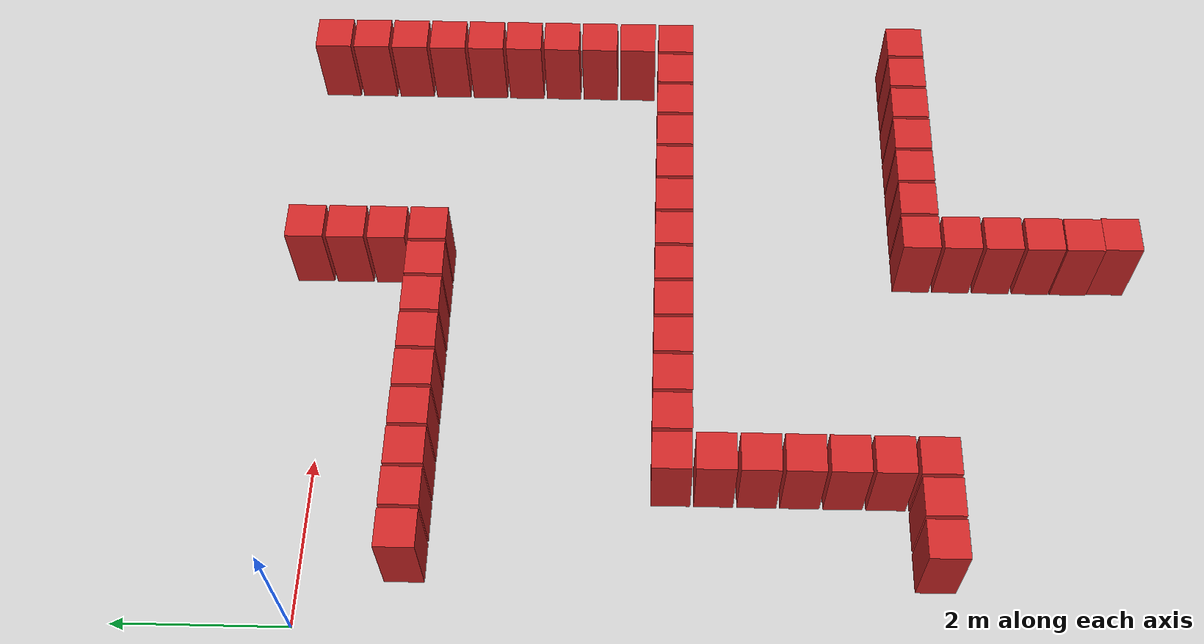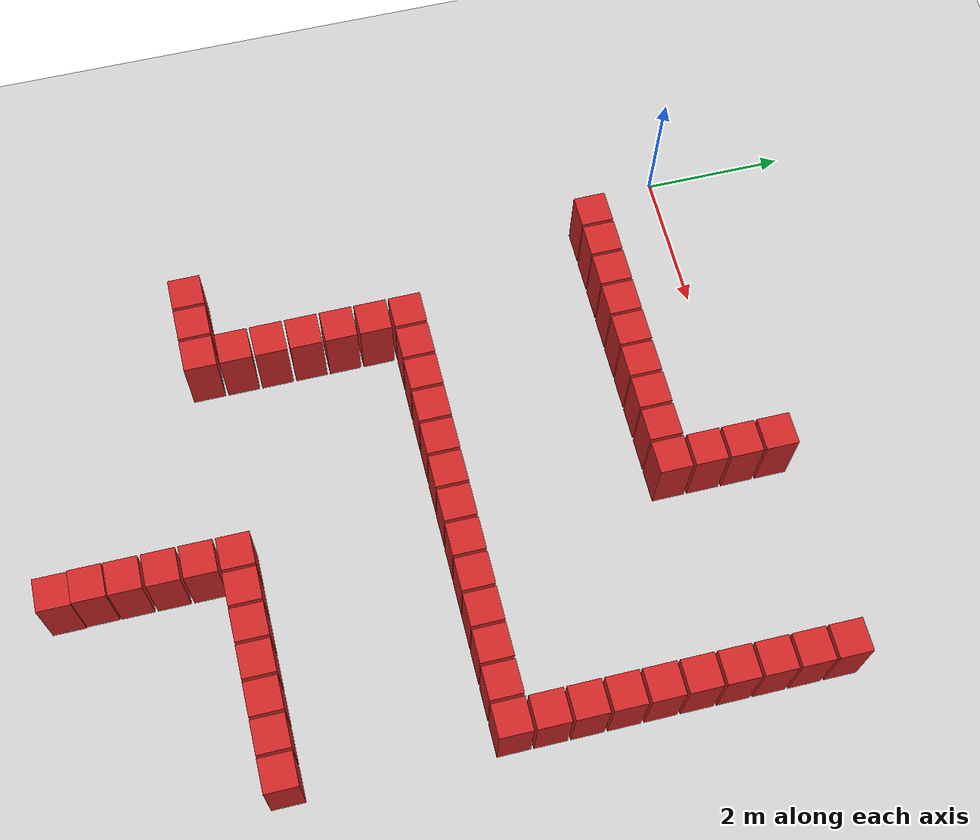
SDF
<sdf version="1.6">
 <world name="default">
  <model name="ground_plane">
   <static>1</static>
   <link name="link">
    <collision name="collision">
     <geometry><plane><normal>0 0 1</normal><size>100 100</size></plane></geometry>
     <surface><friction><ode><mu>100</mu><mu2>50</mu2></ode></friction></surface>
    </collision>
    <visual name="visual">
     <cast_shadows>0</cast_shadows>
     <geometry><plane><normal>0 0 1</normal><size>100 100</size></plane></geometry>
     <material>
      <script><uri>file://media/materials/scripts/gazebo.material</uri><name>Gazebo/Grey</name></script>
     </material>
    </visual>
   </link>
  </model>
  <model name="box_obstacle108">
   <static>0</static>
   <link name="link">
    <pose>0 0 0.1 0 -0 0</pose>
    <inertial>
     <mass>100</mass>
     <inertia>
      <ixx>0.166667</ixx>
      <ixy>0</ixy>
      <ixz>0</ixz>
      <iyy>0.166667</iyy>
      <iyz>0</iyz>
      <izz>0.166667</izz>
     </inertia>
    </inertial>
    <collision name="collision"><geometry><box><size>0.45 0.45 1</size></box></geometry></collision>
    <visual name="visual">
     <geometry><box><size>0.45 0.45 1</size></box></geometry>
     <material>
      <script><name>Gazebo/Red</name><uri>file://media/materials/scripts/gazebo.material</uri></script>
     </material>
    </visual>
   </link>
   <pose>0.779492 -7.06124 0.4 0 5e-06 0.002247</pose>
  </model>
  <model name="box_obstacle109">
   <static>0</static>
   <link name="link">
    <pose>0 0 0.1 0 -0 0</pose>
    <inertial>
     <mass>100</mass>
     <inertia>
      <ixx>0.166667</ixx>
      <ixy>0</ixy>
      <ixz>0</ixz>
      <iyy>0.166667</iyy>
      <iyz>0</iyz>
      <izz>0.166667</izz>
     </inertia>
    </inertial>
    <collision name="collision"><geometry><box><size>0.45 0.45 1</size></box></geometry></collision>
    <visual name="visual">
     <geometry><box><size>0.45 0.45 1</size></box></geometry>
     <material>
      <script><name>Gazebo/Red</name><uri>file://media/materials/scripts/gazebo.material</uri></script>
     </material>
    </visual>
   </link>
   <pose>0.779492 -1.18124 0.4 0 5e-06 0.002247</pose>
  </model>
  <model name="box_obstacle113">
   <static>0</static>
   <link name="link">
    <pose>0 0 0.1 0 -0 0</pose>
    <inertial>
     <mass>100</mass>
     <inertia>
      <ixx>0.166667</ixx>
      <ixy>0</ixy>
      <ixz>0</ixz>
      <iyy>0.166667</iyy>
      <iyz>0</iyz>
      <izz>0.166667</izz>
     </inertia>
    </inertial>
    <collision name="collision"><geometry><box><size>0.45 0.45 1</size></box></geometry></collision>
    <visual name="visual">
     <geometry><box><size>0.45 0.45 1</size></box></geometry>
     <material>
      <script><name>Gazebo/Red</name><uri>file://media/materials/scripts/gazebo.material</uri></script>
     </material>
    </visual>
   </link>
   <pose>1.26949 -7.06124 0.4 0 5e-06 0.002247</pose>
  </model>
  <model name="box_obstacle114">
   <static>0</static>
   <link name="link">
    <pose>0 0 0.1 0 -0 0</pose>
    <inertial>
     <mass>100</mass>
     <inertia>
      <ixx>0.166667</ixx>
      <ixy>0</ixy>
      <ixz>0</ixz>
      <iyy>0.166667</iyy>
      <iyz>0</iyz>
      <izz>0.166667</izz>
     </inertia>
    </inertial>
    <collision name="collision"><geometry><box><size>0.45 0.45 1</size></box></geometry></collision>
    <visual name="visual">
     <geometry><box><size>0.45 0.45 1</size></box></geometry>
     <material>
      <script><name>Gazebo/Red</name><uri>file://media/materials/scripts/gazebo.material</uri></script>
     </material>
    </visual>
   </link>
   <pose>1.26949 -1.18124 0.4 0 5e-06 0.002247</pose>
  </model>
  <model name="box_obstacle118">
   <static>0</static>
   <link name="link">
    <pose>0 0 0.1 0 -0 0</pose>
    <inertial>
     <mass>100</mass>
     <inertia>
      <ixx>0.166667</ixx>
      <ixy>0</ixy>
      <ixz>0</ixz>
      <iyy>0.166667</iyy>
      <iyz>0</iyz>
      <izz>0.166667</izz>
     </inertia>
    </inertial>
    <collision name="collision"><geometry><box><size>0.45 0.45 1</size></box></geometry></collision>
    <visual name="visual">
     <geometry><box><size>0.45 0.45 1</size></box></geometry>
     <material>
      <script><name>Gazebo/Red</name><uri>file://media/materials/scripts/gazebo.material</uri></script>
     </material>
    </visual>
   </link>
   <pose>1.75949 -7.06124 0.4 0 5e-06 0.002247</pose>
  </model>
  <model name="box_obstacle119">
   <static>0</static>
   <link name="link">
    <pose>0 0 0.1 0 -0 0</pose>
    <inertial>
     <mass>100</mass>
     <inertia>
      <ixx>0.166667</ixx>
      <ixy>0</ixy>
      <ixz>0</ixz>
      <iyy>0.166667</iyy>
      <iyz>0</iyz>
      <izz>0.166667</izz>
     </inertia>
    </inertial>
    <collision name="collision"><geometry><box><size>0.45 0.45 1</size></box></geometry></collision>
    <visual name="visual">
     <geometry><box><size>0.45 0.45 1</size></box></geometry>
     <material>
      <script><name>Gazebo/Red</name><uri>file://media/materials/scripts/gazebo.material</uri></script>
     </material>
    </visual>
   </link>
   <pose>1.75949 -6.57124 0.4 0 5e-06 0.002247</pose>
  </model>
  <model name="box_obstacle120">
   <static>0</static>
   <link name="link">
    <pose>0 0 0.1 0 -0 0</pose>
    <inertial>
     <mass>100</mass>
     <inertia>
      <ixx>0.166667</ixx>
      <ixy>0</ixy>
      <ixz>0</ixz>
      <iyy>0.166667</iyy>
      <iyz>0</iyz>
      <izz>0.166667</izz>
     </inertia>
    </inertial>
    <collision name="collision"><geometry><box><size>0.45 0.45 1</size></box></geometry></collision>
    <visual name="visual">
     <geometry><box><size>0.45 0.45 1</size></box></geometry>
     <material>
      <script><name>Gazebo/Red</name><uri>file://media/materials/scripts/gazebo.material</uri></script>
     </material>
    </visual>
   </link>
   <pose>1.75949 -6.08124 0.4 0 5e-06 0.002247</pose>
  </model>
  <model name="box_obstacle121">
   <static>0</static>
   <link name="link">
    <pose>0 0 0.1 0 -0 0</pose>
    <inertial>
     <mass>100</mass>
     <inertia>
      <ixx>0.166667</ixx>
      <ixy>0</ixy>
      <ixz>0</ixz>
      <iyy>0.166667</iyy>
      <iyz>0</iyz>
      <izz>0.166667</izz>
     </inertia>
    </inertial>
    <collision name="collision"><geometry><box><size>0.45 0.45 1</size></box></geometry></collision>
    <visual name="visual">
     <geometry><box><size>0.45 0.45 1</size></box></geometry>
     <material>
      <script><name>Gazebo/Red</name><uri>file://media/materials/scripts/gazebo.material</uri></script>
     </material>
    </visual>
   </link>
   <pose>1.75949 -5.59124 0.4 0 5e-06 0.002247</pose>
  </model>
  <model name="box_obstacle122">
   <static>0</static>
   <link name="link">
    <pose>0 0 0.1 0 -0 0</pose>
    <inertial>
     <mass>100</mass>
     <inertia>
      <ixx>0.166667</ixx>
      <ixy>0</ixy>
      <ixz>0</ixz>
      <iyy>0.166667</iyy>
      <iyz>0</iyz>
      <izz>0.166667</izz>
     </inertia>
    </inertial>
    <collision name="collision"><geometry><box><size>0.45 0.45 1</size></box></geometry></collision>
    <visual name="visual">
     <geometry><box><size>0.45 0.45 1</size></box></geometry>
     <material>
      <script><name>Gazebo/Red</name><uri>file://media/materials/scripts/gazebo.material</uri></script>
     </material>
    </visual>
   </link>
   <pose>1.75949 -5.10124 0.4 0 5e-06 0.002247</pose>
  </model>
  <model name="box_obstacle123">
   <static>0</static>
   <link name="link">
    <pose>0 0 0.1 0 -0 0</pose>
    <inertial>
     <mass>100</mass>
     <inertia>
      <ixx>0.166667</ixx>
      <ixy>0</ixy>
      <ixz>0</ixz>
      <iyy>0.166667</iyy>
      <iyz>0</iyz>
      <izz>0.166667</izz>
     </inertia>
    </inertial>
    <collision name="collision"><geometry><box><size>0.45 0.45 1</size></box></geometry></collision>
    <visual name="visual">
     <geometry><box><size>0.45 0.45 1</size></box></geometry>
     <material>
      <script><name>Gazebo/Red</name><uri>file://media/materials/scripts/gazebo.material</uri></script>
     </material>
    </visual>
   </link>
   <pose>1.75949 -4.61124 0.4 0 5e-06 0.002247</pose>
  </model>
  <model name="box_obstacle124">
   <static>0</static>
   <link name="link">
    <pose>0 0 0.1 0 -0 0</pose>
    <inertial>
     <mass>100</mass>
     <inertia>
      <ixx>0.166667</ixx>
      <ixy>0</ixy>
      <ixz>0</ixz>
      <iyy>0.166667</iyy>
      <iyz>0</iyz>
      <izz>0.166667</izz>
     </inertia>
    </inertial>
    <collision name="collision"><geometry><box><size>0.45 0.45 1</size></box></geometry></collision>
    <visual name="visual">
     <geometry><box><size>0.45 0.45 1</size></box></geometry>
     <material>
      <script><name>Gazebo/Red</name><uri>file://media/materials/scripts/gazebo.material</uri></script>
     </material>
    </visual>
   </link>
   <pose>1.75949 -4.12124 0.4 0 5e-06 0.002247</pose>
  </model>
  <model name="box_obstacle125">
   <static>0</static>
   <link name="link">
    <pose>0 0 0.1 0 -0 0</pose>
    <inertial>
     <mass>100</mass>
     <inertia>
      <ixx>0.166667</ixx>
      <ixy>0</ixy>
      <ixz>0</ixz>
      <iyy>0.166667</iyy>
      <iyz>0</iyz>
      <izz>0.166667</izz>
     </inertia>
    </inertial>
    <collision name="collision"><geometry><box><size>0.45 0.45 1</size></box></geometry></collision>
    <visual name="visual">
     <geometry><box><size>0.45 0.45 1</size></box></geometry>
     <material>
      <script><name>Gazebo/Red</name><uri>file://media/materials/scripts/gazebo.material</uri></script>
     </material>
    </visual>
   </link>
   <pose>1.75949 -1.18124 0.4 0 5e-06 0.002247</pose>
  </model>
  <model name="box_obstacle129">
   <static>0</static>
   <link name="link">
    <pose>0 0 0.1 0 -0 0</pose>
    <inertial>
     <mass>100</mass>
     <inertia>
      <ixx>0.166667</ixx>
      <ixy>0</ixy>
      <ixz>0</ixz>
      <iyy>0.166667</iyy>
      <iyz>0</iyz>
      <izz>0.166667</izz>
     </inertia>
    </inertial>
    <collision name="collision"><geometry><box><size>0.45 0.45 1</size></box></geometry></collision>
    <visual name="visual">
     <geometry><box><size>0.45 0.45 1</size></box></geometry>
     <material>
      <script><name>Gazebo/Red</name><uri>file://media/materials/scripts/gazebo.material</uri></script>
     </material>
    </visual>
   </link>
   <pose>2.24949 -4.12124 0.4 0 5e-06 0.002247</pose>
  </model>
  <model name="box_obstacle130">
   <static>0</static>
   <link name="link">
    <pose>0 0 0.1 0 -0 0</pose>
    <inertial>
     <mass>100</mass>
     <inertia>
      <ixx>0.166667</ixx>
      <ixy>0</ixy>
      <ixz>0</ixz>
      <iyy>0.166667</iyy>
      <iyz>0</iyz>
      <izz>0.166667</izz>
     </inertia>
    </inertial>
    <collision name="collision"><geometry><box><size>0.45 0.45 1</size></box></geometry></collision>
    <visual name="visual">
     <geometry><box><size>0.45 0.45 1</size></box></geometry>
     <material>
      <script><name>Gazebo/Red</name><uri>file://media/materials/scripts/gazebo.material</uri></script>
     </material>
    </visual>
   </link>
   <pose>2.24949 -1.18124 0.4 0 5e-06 0.002247</pose>
  </model>
  <model name="box_obstacle132">
   <static>0</static>
   <link name="link">
    <pose>0 0 0.1 0 -0 0</pose>
    <inertial>
     <mass>100</mass>
     <inertia>
      <ixx>0.166667</ixx>
      <ixy>0</ixy>
      <ixz>0</ixz>
      <iyy>0.166667</iyy>
      <iyz>0</iyz>
      <izz>0.166667</izz>
     </inertia>
    </inertial>
    <collision name="collision"><geometry><box><size>0.45 0.45 1</size></box></geometry></collision>
    <visual name="visual">
     <geometry><box><size>0.45 0.45 1</size></box></geometry>
     <material>
      <script><name>Gazebo/Red</name><uri>file://media/materials/scripts/gazebo.material</uri></script>
     </material>
    </visual>
   </link>
   <pose>2.73949 -4.12124 0.4 0 5e-06 0.002247</pose>
  </model>
  <model name="box_obstacle133">
   <static>0</static>
   <link name="link">
    <pose>0 0 0.1 0 -0 0</pose>
    <inertial>
     <mass>100</mass>
     <inertia>
      <ixx>0.166667</ixx>
      <ixy>0</ixy>
      <ixz>0</ixz>
      <iyy>0.166667</iyy>
      <iyz>0</iyz>
      <izz>0.166667</izz>
     </inertia>
    </inertial>
    <collision name="collision"><geometry><box><size>0.45 0.45 1</size></box></geometry></collision>
    <visual name="visual">
     <geometry><box><size>0.45 0.45 1</size></box></geometry>
     <material>
      <script><name>Gazebo/Red</name><uri>file://media/materials/scripts/gazebo.material</uri></script>
     </material>
    </visual>
   </link>
   <pose>2.73949 -1.18124 0.4 0 5e-06 0.002247</pose>
  </model>
  <model name="box_obstacle135">
   <static>0</static>
   <link name="link">
    <pose>0 0 0.1 0 -0 0</pose>
    <inertial>
     <mass>100</mass>
     <inertia>
      <ixx>0.166667</ixx>
      <ixy>0</ixy>
      <ixz>0</ixz>
      <iyy>0.166667</iyy>
      <iyz>0</iyz>
      <izz>0.166667</izz>
     </inertia>
    </inertial>
    <collision name="collision"><geometry><box><size>0.45 0.45 1</size></box></geometry></collision>
    <visual name="visual">
     <geometry><box><size>0.45 0.45 1</size></box></geometry>
     <material>
      <script><name>Gazebo/Red</name><uri>file://media/materials/scripts/gazebo.material</uri></script>
     </material>
    </visual>
   </link>
   <pose>3.22949 -4.12124 0.4 0 5e-06 0.002247</pose>
  </model>
  <model name="box_obstacle136">
   <static>0</static>
   <link name="link">
    <pose>0 0 0.1 0 -0 0</pose>
    <inertial>
     <mass>100</mass>
     <inertia>
      <ixx>0.166667</ixx>
      <ixy>0</ixy>
      <ixz>0</ixz>
      <iyy>0.166667</iyy>
      <iyz>0</iyz>
      <izz>0.166667</izz>
     </inertia>
    </inertial>
    <collision name="collision"><geometry><box><size>0.45 0.45 1</size></box></geometry></collision>
    <visual name="visual">
     <geometry><box><size>0.45 0.45 1</size></box></geometry>
     <material>
      <script><name>Gazebo/Red</name><uri>file://media/materials/scripts/gazebo.material</uri></script>
     </material>
    </visual>
   </link>
   <pose>3.22949 -1.18124 0.4 0 5e-06 0.002247</pose>
  </model>
  <model name="box_obstacle138">
   <static>0</static>
   <link name="link">
    <pose>0 0 0.1 0 -0 0</pose>
    <inertial>
     <mass>100</mass>
     <inertia>
      <ixx>0.166667</ixx>
      <ixy>0</ixy>
      <ixz>0</ixz>
      <iyy>0.166667</iyy>
      <iyz>0</iyz>
      <izz>0.166667</izz>
     </inertia>
    </inertial>
    <collision name="collision"><geometry><box><size>0.45 0.45 1</size></box></geometry></collision>
    <visual name="visual">
     <geometry><box><size>0.45 0.45 1</size></box></geometry>
     <material>
      <script><name>Gazebo/Red</name><uri>file://media/materials/scripts/gazebo.material</uri></script>
     </material>
    </visual>
   </link>
   <pose>3.71949 -4.12124 0.4 0 5e-06 0.002247</pose>
  </model>
  <model name="box_obstacle139">
   <static>0</static>
   <link name="link">
    <pose>0 0 0.1 0 -0 0</pose>
    <inertial>
     <mass>100</mass>
     <inertia>
      <ixx>0.166667</ixx>
      <ixy>0</ixy>
      <ixz>0</ixz>
      <iyy>0.166667</iyy>
      <iyz>0</iyz>
      <izz>0.166667</izz>
     </inertia>
    </inertial>
    <collision name="collision"><geometry><box><size>0.45 0.45 1</size></box></geometry></collision>
    <visual name="visual">
     <geometry><box><size>0.45 0.45 1</size></box></geometry>
     <material>
      <script><name>Gazebo/Red</name><uri>file://media/materials/scripts/gazebo.material</uri></script>
     </material>
    </visual>
   </link>
   <pose>3.71949 -1.18124 0.4 0 5e-06 0.002247</pose>
  </model>
  <model name="box_obstacle141">
   <static>0</static>
   <link name="link">
    <pose>0 0 0.1 0 -0 0</pose>
    <inertial>
     <mass>100</mass>
     <inertia>
      <ixx>0.166667</ixx>
      <ixy>0</ixy>
      <ixz>0</ixz>
      <iyy>0.166667</iyy>
      <iyz>0</iyz>
      <izz>0.166667</izz>
     </inertia>
    </inertial>
    <collision name="collision"><geometry><box><size>0.45 0.45 1</size></box></geometry></collision>
    <visual name="visual">
     <geometry><box><size>0.45 0.45 1</size></box></geometry>
     <material>
      <script><name>Gazebo/Red</name><uri>file://media/materials/scripts/gazebo.material</uri></script>
     </material>
    </visual>
   </link>
   <pose>4.20949 -4.12124 0.4 0 5e-06 0.002247</pose>
  </model>
  <model name="box_obstacle142">
   <static>0</static>
   <link name="link">
    <pose>0 0 0.1 0 -0 0</pose>
    <inertial>
     <mass>100</mass>
     <inertia>
      <ixx>0.166667</ixx>
      <ixy>0</ixy>
      <ixz>0</ixz>
      <iyy>0.166667</iyy>
      <iyz>0</iyz>
      <izz>0.166667</izz>
     </inertia>
    </inertial>
    <collision name="collision"><geometry><box><size>0.45 0.45 1</size></box></geometry></collision>
    <visual name="visual">
     <geometry><box><size>0.45 0.45 1</size></box></geometry>
     <material>
      <script><name>Gazebo/Red</name><uri>file://media/materials/scripts/gazebo.material</uri></script>
     </material>
    </visual>
   </link>
   <pose>4.20949 -1.18124 0.4 0 5e-06 0.002247</pose>
  </model>
  <model name="box_obstacle144">
   <static>0</static>
   <link name="link">
    <pose>0 0 0.1 0 -0 0</pose>
    <inertial>
     <mass>100</mass>
     <inertia>
      <ixx>0.166667</ixx>
      <ixy>0</ixy>
      <ixz>0</ixz>
      <iyy>0.166667</iyy>
      <iyz>0</iyz>
      <izz>0.166667</izz>
     </inertia>
    </inertial>
    <collision name="collision"><geometry><box><size>0.45 0.45 1</size></box></geometry></collision>
    <visual name="visual">
     <geometry><box><size>0.45 0.45 1</size></box></geometry>
     <material>
      <script><name>Gazebo/Red</name><uri>file://media/materials/scripts/gazebo.material</uri></script>
     </material>
    </visual>
   </link>
   <pose>4.7127 -9.44829 0.4 -4e-06 5e-06 -0.000793</pose>
  </model>
  <model name="box_obstacle145">
   <static>0</static>
   <link name="link">
    <pose>0 0 0.1 0 -0 0</pose>
    <inertial>
     <mass>100</mass>
     <inertia>
      <ixx>0.166667</ixx>
      <ixy>0</ixy>
      <ixz>0</ixz>
      <iyy>0.166667</iyy>
      <iyz>0</iyz>
      <izz>0.166667</izz>
     </inertia>
    </inertial>
    <collision name="collision"><geometry><box><size>0.45 0.45 1</size></box></geometry></collision>
    <visual name="visual">
     <geometry><box><size>0.45 0.45 1</size></box></geometry>
     <material>
      <script><name>Gazebo/Red</name><uri>file://media/materials/scripts/gazebo.material</uri></script>
     </material>
    </visual>
   </link>
   <pose>4.69831 -8.99816 0.399997 -3e-06 1e-06 -0.000326</pose>
  </model>
  <model name="box_obstacle146">
   <static>0</static>
   <link name="link">
    <pose>0 0 0.1 0 -0 0</pose>
    <inertial>
     <mass>100</mass>
     <inertia>
      <ixx>0.166667</ixx>
      <ixy>0</ixy>
      <ixz>0</ixz>
      <iyy>0.166667</iyy>
      <iyz>0</iyz>
      <izz>0.166667</izz>
     </inertia>
    </inertial>
    <collision name="collision"><geometry><box><size>0.45 0.45 1</size></box></geometry></collision>
    <visual name="visual">
     <geometry><box><size>0.45 0.45 1</size></box></geometry>
     <material>
      <script><name>Gazebo/Red</name><uri>file://media/materials/scripts/gazebo.material</uri></script>
     </material>
    </visual>
   </link>
   <pose>4.69949 -8.53124 0.4 0 5e-06 0.002248</pose>
  </model>
  <model name="box_obstacle147">
   <static>0</static>
   <link name="link">
    <pose>0 0 0.1 0 -0 0</pose>
    <inertial>
     <mass>100</mass>
     <inertia>
      <ixx>0.166667</ixx>
      <ixy>0</ixy>
      <ixz>0</ixz>
      <iyy>0.166667</iyy>
      <iyz>0</iyz>
      <izz>0.166667</izz>
     </inertia>
    </inertial>
    <collision name="collision"><geometry><box><size>0.45 0.45 1</size></box></geometry></collision>
    <visual name="visual">
     <geometry><box><size>0.45 0.45 1</size></box></geometry>
     <material>
      <script><name>Gazebo/Red</name><uri>file://media/materials/scripts/gazebo.material</uri></script>
     </material>
    </visual>
   </link>
   <pose>4.69949 -8.04124 0.4 0 5e-06 0.002247</pose>
  </model>
  <model name="box_obstacle148">
   <static>0</static>
   <link name="link">
    <pose>0 0 0.1 0 -0 0</pose>
    <inertial>
     <mass>100</mass>
     <inertia>
      <ixx>0.166667</ixx>
      <ixy>0</ixy>
      <ixz>0</ixz>
      <iyy>0.166667</iyy>
      <iyz>0</iyz>
      <izz>0.166667</izz>
     </inertia>
    </inertial>
    <collision name="collision"><geometry><box><size>0.45 0.45 1</size></box></geometry></collision>
    <visual name="visual">
     <geometry><box><size>0.45 0.45 1</size></box></geometry>
     <material>
      <script><name>Gazebo/Red</name><uri>file://media/materials/scripts/gazebo.material</uri></script>
     </material>
    </visual>
   </link>
   <pose>4.69949 -7.55124 0.4 0 5e-06 0.002247</pose>
  </model>
  <model name="box_obstacle149">
   <static>0</static>
   <link name="link">
    <pose>0 0 0.1 0 -0 0</pose>
    <inertial>
     <mass>100</mass>
     <inertia>
      <ixx>0.166667</ixx>
      <ixy>0</ixy>
      <ixz>0</ixz>
      <iyy>0.166667</iyy>
      <iyz>0</iyz>
      <izz>0.166667</izz>
     </inertia>
    </inertial>
    <collision name="collision"><geometry><box><size>0.45 0.45 1</size></box></geometry></collision>
    <visual name="visual">
     <geometry><box><size>0.45 0.45 1</size></box></geometry>
     <material>
      <script><name>Gazebo/Red</name><uri>file://media/materials/scripts/gazebo.material</uri></script>
     </material>
    </visual>
   </link>
   <pose>4.69949 -7.06124 0.4 0 5e-06 0.002247</pose>
  </model>
  <model name="box_obstacle150">
   <static>0</static>
   <link name="link">
    <pose>0 0 0.1 0 -0 0</pose>
    <inertial>
     <mass>100</mass>
     <inertia>
      <ixx>0.166667</ixx>
      <ixy>0</ixy>
      <ixz>0</ixz>
      <iyy>0.166667</iyy>
      <iyz>0</iyz>
      <izz>0.166667</izz>
     </inertia>
    </inertial>
    <collision name="collision"><geometry><box><size>0.45 0.45 1</size></box></geometry></collision>
    <visual name="visual">
     <geometry><box><size>0.45 0.45 1</size></box></geometry>
     <material>
      <script><name>Gazebo/Red</name><uri>file://media/materials/scripts/gazebo.material</uri></script>
     </material>
    </visual>
   </link>
   <pose>4.69949 -4.12124 0.4 0 5e-06 0.002247</pose>
  </model>
  <model name="box_obstacle151">
   <static>0</static>
   <link name="link">
    <pose>0 0 0.1 0 -0 0</pose>
    <inertial>
     <mass>100</mass>
     <inertia>
      <ixx>0.166667</ixx>
      <ixy>0</ixy>
      <ixz>0</ixz>
      <iyy>0.166667</iyy>
      <iyz>0</iyz>
      <izz>0.166667</izz>
     </inertia>
    </inertial>
    <collision name="collision"><geometry><box><size>0.45 0.45 1</size></box></geometry></collision>
    <visual name="visual">
     <geometry><box><size>0.45 0.45 1</size></box></geometry>
     <material>
      <script><name>Gazebo/Red</name><uri>file://media/materials/scripts/gazebo.material</uri></script>
     </material>
    </visual>
   </link>
   <pose>4.69949 -1.18124 0.4 0 5e-06 0.002247</pose>
  </model>
  <model name="box_obstacle152">
   <static>0</static>
   <link name="link">
    <pose>0 0 0.1 0 -0 0</pose>
    <inertial>
     <mass>100</mass>
     <inertia>
      <ixx>0.166667</ixx>
      <ixy>0</ixy>
      <ixz>0</ixz>
      <iyy>0.166667</iyy>
      <iyz>0</iyz>
      <izz>0.166667</izz>
     </inertia>
    </inertial>
    <collision name="collision"><geometry><box><size>0.45 0.45 1</size></box></geometry></collision>
    <visual name="visual">
     <geometry><box><size>0.45 0.45 1</size></box></geometry>
     <material>
      <script><name>Gazebo/Red</name><uri>file://media/materials/scripts/gazebo.material</uri></script>
     </material>
    </visual>
   </link>
   <pose>4.69949 -0.691242 0.4 0 5e-06 0.002247</pose>
  </model>
  <model name="box_obstacle153">
   <static>0</static>
   <link name="link">
    <pose>0 0 0.1 0 -0 0</pose>
    <inertial>
     <mass>100</mass>
     <inertia>
      <ixx>0.166667</ixx>
      <ixy>0</ixy>
      <ixz>0</ixz>
      <iyy>0.166667</iyy>
      <iyz>0</iyz>
      <izz>0.166667</izz>
     </inertia>
    </inertial>
    <collision name="collision"><geometry><box><size>0.45 0.45 1</size></box></geometry></collision>
    <visual name="visual">
     <geometry><box><size>0.45 0.45 1</size></box></geometry>
     <material>
      <script><name>Gazebo/Red</name><uri>file://media/materials/scripts/gazebo.material</uri></script>
     </material>
    </visual>
   </link>
   <pose>4.69949 -0.201242 0.4 0 5e-06 0.002247</pose>
  </model>
  <model name="box_obstacle154">
   <static>0</static>
   <link name="link">
    <pose>0 0 0.1 0 -0 0</pose>
    <inertial>
     <mass>100</mass>
     <inertia>
      <ixx>0.166667</ixx>
      <ixy>0</ixy>
      <ixz>0</ixz>
      <iyy>0.166667</iyy>
      <iyz>0</iyz>
      <izz>0.166667</izz>
     </inertia>
    </inertial>
    <collision name="collision"><geometry><box><size>0.45 0.45 1</size></box></geometry></collision>
    <visual name="visual">
     <geometry><box><size>0.45 0.45 1</size></box></geometry>
     <material>
      <script><name>Gazebo/Red</name><uri>file://media/materials/scripts/gazebo.material</uri></script>
     </material>
    </visual>
   </link>
   <pose>4.69949 0.288758 0.4 0 5e-06 0.002247</pose>
  </model>
  <model name="box_obstacle170">
   <static>0</static>
   <link name="link">
    <pose>0 0 0.1 0 -0 0</pose>
    <inertial>
     <mass>100</mass>
     <inertia>
      <ixx>0.166667</ixx>
      <ixy>0</ixy>
      <ixz>0</ixz>
      <iyy>0.166667</iyy>
      <iyz>0</iyz>
      <izz>0.166667</izz>
     </inertia>
    </inertial>
    <collision name="collision"><geometry><box><size>0.45 0.45 1</size></box></geometry></collision>
    <visual name="visual">
     <geometry><box><size>0.45 0.45 1</size></box></geometry>
     <material>
      <script><name>Gazebo/Red</name><uri>file://media/materials/scripts/gazebo.material</uri></script>
     </material>
    </visual>
   </link>
   <pose>5.18949 -7.06124 0.4 0 5e-06 0.002247</pose>
  </model>
  <model name="box_obstacle171">
   <static>0</static>
   <link name="link">
    <pose>0 0 0.1 0 -0 0</pose>
    <inertial>
     <mass>100</mass>
     <inertia>
      <ixx>0.166667</ixx>
      <ixy>0</ixy>
      <ixz>0</ixz>
      <iyy>0.166667</iyy>
      <iyz>0</iyz>
      <izz>0.166667</izz>
     </inertia>
    </inertial>
    <collision name="collision"><geometry><box><size>0.45 0.45 1</size></box></geometry></collision>
    <visual name="visual">
     <geometry><box><size>0.45 0.45 1</size></box></geometry>
     <material>
      <script><name>Gazebo/Red</name><uri>file://media/materials/scripts/gazebo.material</uri></script>
     </material>
    </visual>
   </link>
   <pose>5.18949 -4.12124 0.4 0 5e-06 0.002247</pose>
  </model>
  <model name="box_obstacle174">
   <static>0</static>
   <link name="link">
    <pose>0 0 0.1 0 -0 0</pose>
    <inertial>
     <mass>100</mass>
     <inertia>
      <ixx>0.166667</ixx>
      <ixy>0</ixy>
      <ixz>0</ixz>
      <iyy>0.166667</iyy>
      <iyz>0</iyz>
      <izz>0.166667</izz>
     </inertia>
    </inertial>
    <collision name="collision"><geometry><box><size>0.45 0.45 1</size></box></geometry></collision>
    <visual name="visual">
     <geometry><box><size>0.45 0.45 1</size></box></geometry>
     <material>
      <script><name>Gazebo/Red</name><uri>file://media/materials/scripts/gazebo.material</uri></script>
     </material>
    </visual>
   </link>
   <pose>5.67949 -7.06124 0.4 0 5e-06 0.002247</pose>
  </model>
  <model name="box_obstacle175">
   <static>0</static>
   <link name="link">
    <pose>0 0 0.1 0 -0 0</pose>
    <inertial>
     <mass>100</mass>
     <inertia>
      <ixx>0.166667</ixx>
      <ixy>0</ixy>
      <ixz>0</ixz>
      <iyy>0.166667</iyy>
      <iyz>0</iyz>
      <izz>0.166667</izz>
     </inertia>
    </inertial>
    <collision name="collision"><geometry><box><size>0.45 0.45 1</size></box></geometry></collision>
    <visual name="visual">
     <geometry><box><size>0.45 0.45 1</size></box></geometry>
     <material>
      <script><name>Gazebo/Red</name><uri>file://media/materials/scripts/gazebo.material</uri></script>
     </material>
    </visual>
   </link>
   <pose>5.67949 -4.12124 0.4 0 5e-06 0.002247</pose>
  </model>
  <model name="box_obstacle178">
   <static>0</static>
   <link name="link">
    <pose>0 0 0.1 0 -0 0</pose>
    <inertial>
     <mass>100</mass>
     <inertia>
      <ixx>0.166667</ixx>
      <ixy>0</ixy>
      <ixz>0</ixz>
      <iyy>0.166667</iyy>
      <iyz>0</iyz>
      <izz>0.166667</izz>
     </inertia>
    </inertial>
    <collision name="collision"><geometry><box><size>0.45 0.45 1</size></box></geometry></collision>
    <visual name="visual">
     <geometry><box><size>0.45 0.45 1</size></box></geometry>
     <material>
      <script><name>Gazebo/Red</name><uri>file://media/materials/scripts/gazebo.material</uri></script>
     </material>
    </visual>
   </link>
   <pose>6.16949 -7.06124 0.4 0 5e-06 0.002247</pose>
  </model>
  <model name="box_obstacle179">
   <static>0</static>
   <link name="link">
    <pose>0 0 0.1 0 -0 0</pose>
    <inertial>
     <mass>100</mass>
     <inertia>
      <ixx>0.166667</ixx>
      <ixy>0</ixy>
      <ixz>0</ixz>
      <iyy>0.166667</iyy>
      <iyz>0</iyz>
      <izz>0.166667</izz>
     </inertia>
    </inertial>
    <collision name="collision"><geometry><box><size>0.45 0.45 1</size></box></geometry></collision>
    <visual name="visual">
     <geometry><box><size>0.45 0.45 1</size></box></geometry>
     <material>
      <script><name>Gazebo/Red</name><uri>file://media/materials/scripts/gazebo.material</uri></script>
     </material>
    </visual>
   </link>
   <pose>6.16949 -4.12124 0.4 0 5e-06 0.002247</pose>
  </model>
  <model name="box_obstacle182">
   <static>0</static>
   <link name="link">
    <pose>0 0 0.1 0 -0 0</pose>
    <inertial>
     <mass>100</mass>
     <inertia>
      <ixx>0.166667</ixx>
      <ixy>0</ixy>
      <ixz>0</ixz>
      <iyy>0.166667</iyy>
      <iyz>0</iyz>
      <izz>0.166667</izz>
     </inertia>
    </inertial>
    <collision name="collision"><geometry><box><size>0.45 0.45 1</size></box></geometry></collision>
    <visual name="visual">
     <geometry><box><size>0.45 0.45 1</size></box></geometry>
     <material>
      <script><name>Gazebo/Red</name><uri>file://media/materials/scripts/gazebo.material</uri></script>
     </material>
    </visual>
   </link>
   <pose>6.65949 -7.06124 0.4 0 5e-06 0.002247</pose>
  </model>
  <model name="box_obstacle183">
   <static>0</static>
   <link name="link">
    <pose>0 0 0.1 0 -0 0</pose>
    <inertial>
     <mass>100</mass>
     <inertia>
      <ixx>0.166667</ixx>
      <ixy>0</ixy>
      <ixz>0</ixz>
      <iyy>0.166667</iyy>
      <iyz>0</iyz>
      <izz>0.166667</izz>
     </inertia>
    </inertial>
    <collision name="collision"><geometry><box><size>0.45 0.45 1</size></box></geometry></collision>
    <visual name="visual">
     <geometry><box><size>0.45 0.45 1</size></box></geometry>
     <material>
      <script><name>Gazebo/Red</name><uri>file://media/materials/scripts/gazebo.material</uri></script>
     </material>
    </visual>
   </link>
   <pose>6.65949 -4.12124 0.4 0 5e-06 0.002247</pose>
  </model>
  <model name="box_obstacle186">
   <static>0</static>
   <link name="link">
    <pose>0 0 0.1 0 -0 0</pose>
    <inertial>
     <mass>100</mass>
     <inertia>
      <ixx>0.166667</ixx>
      <ixy>0</ixy>
      <ixz>0</ixz>
      <iyy>0.166667</iyy>
      <iyz>0</iyz>
      <izz>0.166667</izz>
     </inertia>
    </inertial>
    <collision name="collision"><geometry><box><size>0.45 0.45 1</size></box></geometry></collision>
    <visual name="visual">
     <geometry><box><size>0.45 0.45 1</size></box></geometry>
     <material>
      <script><name>Gazebo/Red</name><uri>file://media/materials/scripts/gazebo.material</uri></script>
     </material>
    </visual>
   </link>
   <pose>7.14949 -7.06124 0.4 0 5e-06 0.002247</pose>
  </model>
  <model name="box_obstacle187">
   <static>0</static>
   <link name="link">
    <pose>0 0 0.1 0 -0 0</pose>
    <inertial>
     <mass>100</mass>
     <inertia>
      <ixx>0.166667</ixx>
      <ixy>0</ixy>
      <ixz>0</ixz>
      <iyy>0.166667</iyy>
      <iyz>0</iyz>
      <izz>0.166667</izz>
     </inertia>
    </inertial>
    <collision name="collision"><geometry><box><size>0.45 0.45 1</size></box></geometry></collision>
    <visual name="visual">
     <geometry><box><size>0.45 0.45 1</size></box></geometry>
     <material>
      <script><name>Gazebo/Red</name><uri>file://media/materials/scripts/gazebo.material</uri></script>
     </material>
    </visual>
   </link>
   <pose>7.14949 -4.12124 0.4 0 5e-06 0.002247</pose>
  </model>
  <model name="box_obstacle190">
   <static>0</static>
   <link name="link">
    <pose>0 0 0.1 0 -0 0</pose>
    <inertial>
     <mass>100</mass>
     <inertia>
      <ixx>0.166667</ixx>
      <ixy>0</ixy>
      <ixz>0</ixz>
      <iyy>0.166667</iyy>
      <iyz>0</iyz>
      <izz>0.166667</izz>
     </inertia>
    </inertial>
    <collision name="collision"><geometry><box><size>0.45 0.45 1</size></box></geometry></collision>
    <visual name="visual">
     <geometry><box><size>0.45 0.45 1</size></box></geometry>
     <material>
      <script><name>Gazebo/Red</name><uri>file://media/materials/scripts/gazebo.material</uri></script>
     </material>
    </visual>
   </link>
   <pose>7.63949 -7.06124 0.4 0 5e-06 0.002247</pose>
  </model>
  <model name="box_obstacle191">
   <static>0</static>
   <link name="link">
    <pose>0 0 0.1 0 -0 0</pose>
    <inertial>
     <mass>100</mass>
     <inertia>
      <ixx>0.166667</ixx>
      <ixy>0</ixy>
      <ixz>0</ixz>
      <iyy>0.166667</iyy>
      <iyz>0</iyz>
      <izz>0.166667</izz>
     </inertia>
    </inertial>
    <collision name="collision"><geometry><box><size>0.45 0.45 1</size></box></geometry></collision>
    <visual name="visual">
     <geometry><box><size>0.45 0.45 1</size></box></geometry>
     <material>
      <script><name>Gazebo/Red</name><uri>file://media/materials/scripts/gazebo.material</uri></script>
     </material>
    </visual>
   </link>
   <pose>7.63949 -4.12124 0.4 0 5e-06 0.002247</pose>
  </model>
  <model name="box_obstacle192">
   <static>0</static>
   <link name="link">
    <pose>0 0 0.1 0 -0 0</pose>
    <inertial>
     <mass>100</mass>
     <inertia>
      <ixx>0.166667</ixx>
      <ixy>0</ixy>
      <ixz>0</ixz>
      <iyy>0.166667</iyy>
      <iyz>0</iyz>
      <izz>0.166667</izz>
     </inertia>
    </inertial>
    <collision name="collision"><geometry><box><size>0.45 0.45 1</size></box></geometry></collision>
    <visual name="visual">
     <geometry><box><size>0.45 0.45 1</size></box></geometry>
     <material>
      <script><name>Gazebo/Red</name><uri>file://media/materials/scripts/gazebo.material</uri></script>
     </material>
    </visual>
   </link>
   <pose>7.63949 -3.63124 0.4 0 5e-06 0.002247</pose>
  </model>
  <model name="box_obstacle193">
   <static>0</static>
   <link name="link">
    <pose>0 0 0.1 0 -0 0</pose>
    <inertial>
     <mass>100</mass>
     <inertia>
      <ixx>0.166667</ixx>
      <ixy>0</ixy>
      <ixz>0</ixz>
      <iyy>0.166667</iyy>
      <iyz>0</iyz>
      <izz>0.166667</izz>
     </inertia>
    </inertial>
    <collision name="collision"><geometry><box><size>0.45 0.45 1</size></box></geometry></collision>
    <visual name="visual">
     <geometry><box><size>0.45 0.45 1</size></box></geometry>
     <material>
      <script><name>Gazebo/Red</name><uri>file://media/materials/scripts/gazebo.material</uri></script>
     </material>
    </visual>
   </link>
   <pose>7.63949 -3.14124 0.4 0 5e-06 0.002247</pose>
  </model>
  <model name="box_obstacle194">
   <static>0</static>
   <link name="link">
    <pose>0 0 0.1 0 -0 0</pose>
    <inertial>
     <mass>100</mass>
     <inertia>
      <ixx>0.166667</ixx>
      <ixy>0</ixy>
      <ixz>0</ixz>
      <iyy>0.166667</iyy>
      <iyz>0</iyz>
      <izz>0.166667</izz>
     </inertia>
    </inertial>
    <collision name="collision"><geometry><box><size>0.45 0.45 1</size></box></geometry></collision>
    <visual name="visual">
     <geometry><box><size>0.45 0.45 1</size></box></geometry>
     <material>
      <script><name>Gazebo/Red</name><uri>file://media/materials/scripts/gazebo.material</uri></script>
     </material>
    </visual>
   </link>
   <pose>7.63949 -2.65124 0.4 0 5e-06 0.002247</pose>
  </model>
  <model name="box_obstacle195">
   <static>0</static>
   <link name="link">
    <pose>0 0 0.1 0 -0 0</pose>
    <inertial>
     <mass>100</mass>
     <inertia>
      <ixx>0.166667</ixx>
      <ixy>0</ixy>
      <ixz>0</ixz>
      <iyy>0.166667</iyy>
      <iyz>0</iyz>
      <izz>0.166667</izz>
     </inertia>
    </inertial>
    <collision name="collision"><geometry><box><size>0.45 0.45 1</size></box></geometry></collision>
    <visual name="visual">
     <geometry><box><size>0.45 0.45 1</size></box></geometry>
     <material>
      <script><name>Gazebo/Red</name><uri>file://media/materials/scripts/gazebo.material</uri></script>
     </material>
    </visual>
   </link>
   <pose>7.63949 -2.16124 0.4 0 5e-06 0.002247</pose>
  </model>
  <model name="box_obstacle196">
   <static>0</static>
   <link name="link">
    <pose>0 0 0.1 0 -0 0</pose>
    <inertial>
     <mass>100</mass>
     <inertia>
      <ixx>0.166667</ixx>
      <ixy>0</ixy>
      <ixz>0</ixz>
      <iyy>0.166667</iyy>
      <iyz>0</iyz>
      <izz>0.166667</izz>
     </inertia>
    </inertial>
    <collision name="collision"><geometry><box><size>0.45 0.45 1</size></box></geometry></collision>
    <visual name="visual">
     <geometry><box><size>0.45 0.45 1</size></box></geometry>
     <material>
      <script><name>Gazebo/Red</name><uri>file://media/materials/scripts/gazebo.material</uri></script>
     </material>
    </visual>
   </link>
   <pose>7.63949 -1.67124 0.4 0 5e-06 0.002247</pose>
  </model>
  <model name="box_obstacle197">
   <static>0</static>
   <link name="link">
    <pose>0 0 0.1 0 -0 0</pose>
    <inertial>
     <mass>100</mass>
     <inertia>
      <ixx>0.166667</ixx>
      <ixy>0</ixy>
      <ixz>0</ixz>
      <iyy>0.166667</iyy>
      <iyz>0</iyz>
      <izz>0.166667</izz>
     </inertia>
    </inertial>
    <collision name="collision"><geometry><box><size>0.45 0.45 1</size></box></geometry></collision>
    <visual name="visual">
     <geometry><box><size>0.45 0.45 1</size></box></geometry>
     <material>
      <script><name>Gazebo/Red</name><uri>file://media/materials/scripts/gazebo.material</uri></script>
     </material>
    </visual>
   </link>
   <pose>7.63949 -1.18124 0.4 0 5e-06 0.002247</pose>
  </model>
  <model name="box_obstacle198">
   <static>0</static>
   <link name="link">
    <pose>0 0 0.1 0 -0 0</pose>
    <inertial>
     <mass>100</mass>
     <inertia>
      <ixx>0.166667</ixx>
      <ixy>0</ixy>
      <ixz>0</ixz>
      <iyy>0.166667</iyy>
      <iyz>0</iyz>
      <izz>0.166667</izz>
     </inertia>
    </inertial>
    <collision name="collision"><geometry><box><size>0.45 0.45 1</size></box></geometry></collision>
    <visual name="visual">
     <geometry><box><size>0.45 0.45 1</size></box></geometry>
     <material>
      <script><name>Gazebo/Red</name><uri>file://media/materials/scripts/gazebo.material</uri></script>
     </material>
    </visual>
   </link>
   <pose>7.63949 -0.691242 0.4 0 5e-06 0.002247</pose>
  </model>
  <model name="box_obstacle199">
   <static>0</static>
   <link name="link">
    <pose>0 0 0.1 0 -0 0</pose>
    <inertial>
     <mass>100</mass>
     <inertia>
      <ixx>0.166667</ixx>
      <ixy>0</ixy>
      <ixz>0</ixz>
      <iyy>0.166667</iyy>
      <iyz>0</iyz>
      <izz>0.166667</izz>
     </inertia>
    </inertial>
    <collision name="collision"><geometry><box><size>0.45 0.45 1</size></box></geometry></collision>
    <visual name="visual">
     <geometry><box><size>0.45 0.45 1</size></box></geometry>
     <material>
      <script><name>Gazebo/Red</name><uri>file://media/materials/scripts/gazebo.material</uri></script>
     </material>
    </visual>
   </link>
   <pose>7.63949 -0.201242 0.4 0 5e-06 0.002247</pose>
  </model>
  <model name="box_obstacle200">
   <static>0</static>
   <link name="link">
    <pose>0 0 0.1 0 -0 0</pose>
    <inertial>
     <mass>100</mass>
     <inertia>
      <ixx>0.166667</ixx>
      <ixy>0</ixy>
      <ixz>0</ixz>
      <iyy>0.166667</iyy>
      <iyz>0</iyz>
      <izz>0.166667</izz>
     </inertia>
    </inertial>
    <collision name="collision"><geometry><box><size>0.45 0.45 1</size></box></geometry></collision>
    <visual name="visual">
     <geometry><box><size>0.45 0.45 1</size></box></geometry>
     <material>
      <script><name>Gazebo/Red</name><uri>file://media/materials/scripts/gazebo.material</uri></script>
     </material>
    </visual>
   </link>
   <pose>7.63949 0.288758 0.4 0 5e-06 0.002247</pose>
  </model>
 </world>
</sdf>
